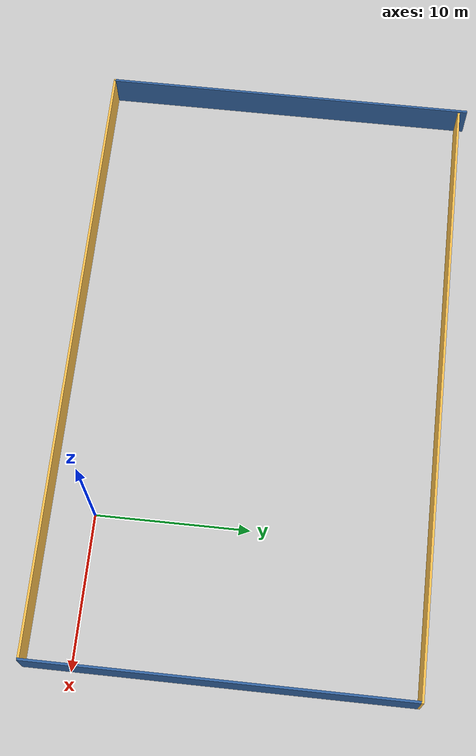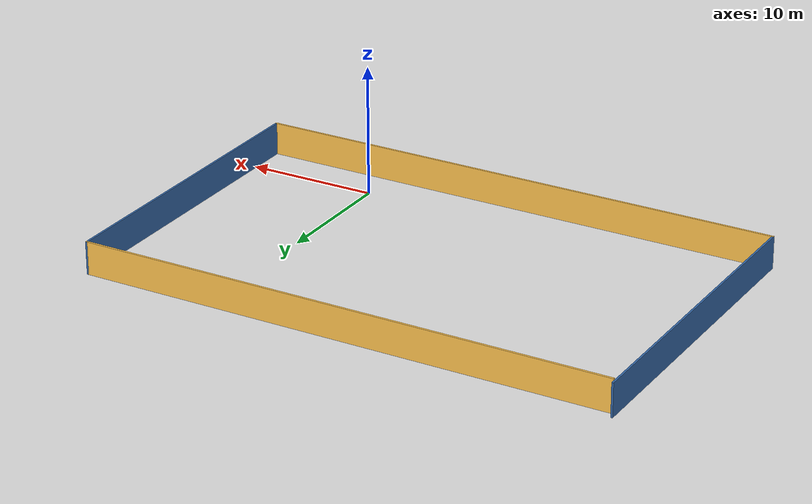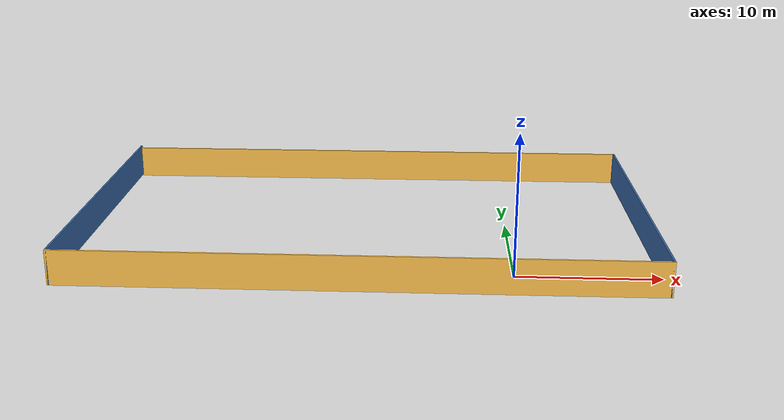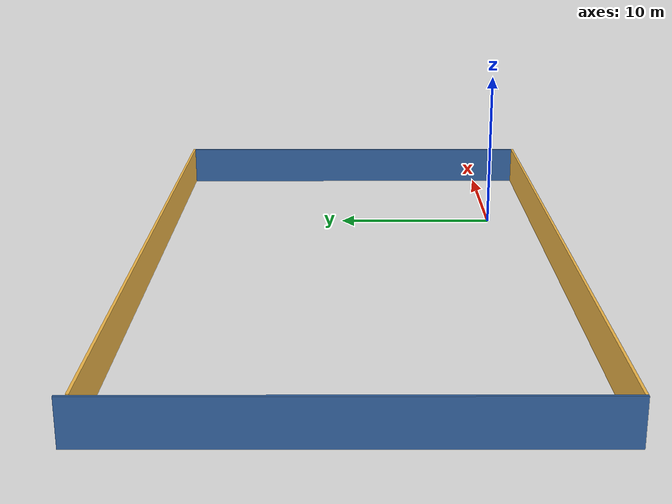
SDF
<?xml version='1.0'?>
<sdf version='1.6'>
  <model name='one_wall.sdf'>
    <pose frame=''>-10.5083 9.46651 0 0 -0 0</pose>
    <link name='Wall_13'>
      <collision name='Wall_13_Collision'>
        <geometry>
          <box>
            <size>25 0.15 2.5</size>
          </box>
        </geometry>
        <pose frame=''>0 0 1.25 0 -0 0</pose>
      </collision>
      <visual name='Wall_13_Visual'>
        <pose frame=''>0 0 1.25 0 -0 0</pose>
        <geometry>
          <box>
            <size>25 0.15 2.5</size>
          </box>
        </geometry>
        <material>
          <script>
            <uri>file://media/materials/scripts/gazebo.material</uri>
            <name>Gazebo/Grey</name>
          </script>
          <ambient>0.203922 0.396078 0.643137 1</ambient>
        </material>
        <meta>
          <layer>0</layer>
        </meta>
      </visual>
      <pose frame=''>-20.425 -0 0 0 -0 -1.5708</pose>
    </link>
    <link name='Wall_14'>
      <collision name='Wall_14_Collision'>
        <geometry>
          <box>
            <size>41 0.15 2.5</size>
          </box>
        </geometry>
        <pose frame=''>0 0 1.25 0 -0 0</pose>
      </collision>
      <visual name='Wall_14_Visual'>
        <pose frame=''>0 0 1.25 0 -0 0</pose>
        <geometry>
          <box>
            <size>41 0.15 2.5</size>
          </box>
        </geometry>
        <material>
          <script>
            <uri>file://media/materials/scripts/gazebo.material</uri>
            <name>Gazebo/Grey</name>
          </script>
          <ambient>1 0.764706 0.305882 1</ambient>
        </material>
        <meta>
          <layer>0</layer>
        </meta>
      </visual>
      <pose frame=''>-0 -12.425 0 0 -0 0</pose>
    </link>
    <link name='Wall_15'>
      <collision name='Wall_15_Collision'>
        <geometry>
          <box>
            <size>24.5 0.15 2.5</size>
          </box>
        </geometry>
        <pose frame=''>0 0 1.25 0 -0 0</pose>
      </collision>
      <visual name='Wall_15_Visual'>
        <pose frame=''>0 0 1.25 0 -0 0</pose>
        <geometry>
          <box>
            <size>24.5 0.15 2.5</size>
          </box>
        </geometry>
        <material>
          <script>
            <uri>file://media/materials/scripts/gazebo.material</uri>
            <name>Gazebo/Grey</name>
          </script>
          <ambient>0.203922 0.396078 0.643137 1</ambient>
        </material>
        <meta>
          <layer>0</layer>
        </meta>
      </visual>
      <pose frame=''>20.425 -0.25 0 0 -0 1.5708</pose>
    </link>
    <link name='Wall_16'>
      <collision name='Wall_16_Collision'>
        <geometry>
          <box>
            <size>40.75 0.15 2.5</size>
          </box>
        </geometry>
        <pose frame=''>0 0 1.25 0 -0 0</pose>
      </collision>
      <visual name='Wall_16_Visual'>
        <pose frame=''>0 0 1.25 0 -0 0</pose>
        <geometry>
          <box>
            <size>40.75 0.15 2.5</size>
          </box>
        </geometry>
        <material>
          <script>
            <uri>file://media/materials/scripts/gazebo.material</uri>
            <name>Gazebo/Grey</name>
          </script>
          <ambient>1 0.764706 0.305882 1</ambient>
        </material>
        <meta>
          <layer>0</layer>
        </meta>
      </visual>
      <pose frame=''>0.125 11.925 0 0 -0 3.14159</pose>
    </link>
    <static>1</static>
  </model>
</sdf>
